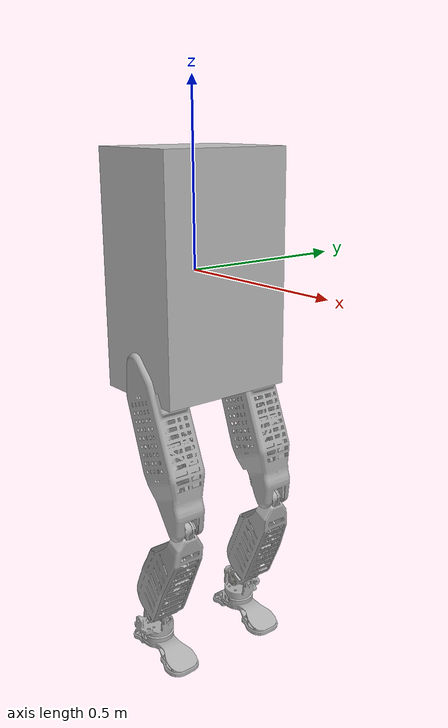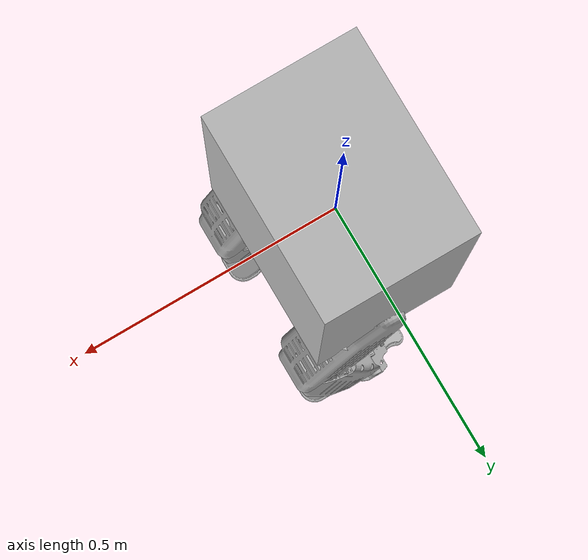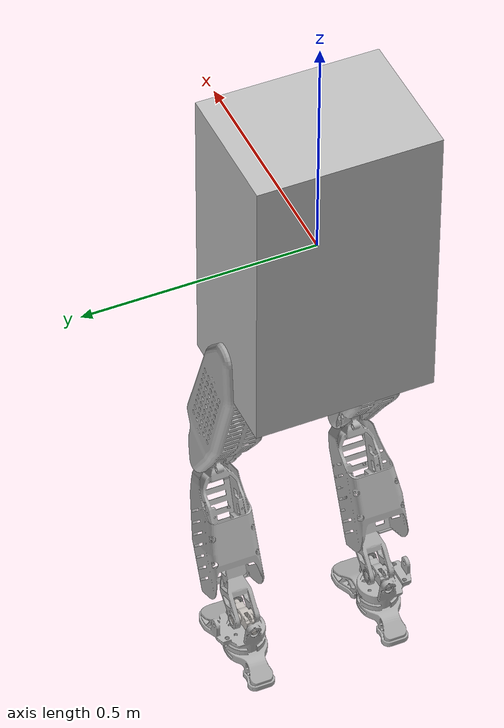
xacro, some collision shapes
<?xml version="1.0" encoding="utf-8"?>
<robot
  name="biped_gazebo">

  <link
    name="trunk">
    <inertial>
      <origin
        xyz="-0.0069577 -4.092E-06 0"
        rpy="0 0 0" />
      <mass
        value="5.3881" />
      <inertia
        ixx="0.045616"
        ixy="-2.279E-06"
        ixz="2.4007E-07"
        iyy="0.029371"
        iyz="1.1002E-10"
        izz="0.074965" />
    </inertial>
    <visual>
      <origin
        xyz="0 0 0"
        rpy="0 0 0" />
      <geometry>
        <mesh
          filename="package://biped_gazebo/meshes/trunk.STL" />
      </geometry>
      <material
        name="">
        <color
          rgba="0.75294 0.75294 0.75294 1" />
      </material>
    </visual>
     <collision>
      <origin
        xyz="0 0 0"
        rpy="0 0 0" />
      <geometry>
        <box size="0.290 0.389 0.648"/>
      </geometry>
    </collision>
  </link>
  <link
    name="r_hip_1">
    <inertial>
      <origin
        xyz="0.033316 4.3525E-12 0.04091"
        rpy="0 0 0" />
      <mass
        value="0.06082" />
      <inertia
        ixx="5.6576E-05"
        ixy="1.3981E-14"
        ixz="4.5222E-06"
        iyy="0.00010609"
        iyz="7.7058E-15"
        izz="0.00010293" />
    </inertial>
    <visual>
      <origin
        xyz="0 0 0"
        rpy="0 0 0" />
      <geometry>
        <mesh
          filename="package://biped_gazebo/meshes/r_hip_1.STL" />
      </geometry>
      <material
        name="">
        <color
          rgba="0.69804 0.69804 0.69804 1" />
      </material>
    </visual>
    <collision>
      <origin
        xyz="0 0 0"
        rpy="0 0 0" />
      <geometry>
        <mesh
          filename="package://biped_gazebo/meshes/r_hip_1.STL" />
      </geometry>
    </collision>
  </link>
  <joint
    name="r_j0"
    type="revolute">
    <origin
      xyz="0 -0.154999999999996 -0.232487666753022"
      rpy="0 -0.338000462941209 0" />
    <parent
      link="trunk" />
    <child
      link="r_hip_1" />
    <axis
      xyz="0.331601353840647 0 0.943419600247446" />
    <dynamics damping="${damping}" friction="${friction}"/>
     <limit effort="${joint_torque_max}" velocity="${joint_velocity_max}" lower="${hip_min*PI/180.0}" upper="${hip_max*PI/180.0}"/>
  </joint>
  <link
    name="r_hip_2">
    <inertial>
      <origin
        xyz="0.010787 -0.00079176 -0.0038183"
        rpy="0 0 0" />
      <mass
        value="0.03831" />
      <inertia
        ixx="1.8449E-05"
        ixy="-3.2225E-07"
        ixz="1.4639E-05"
        iyy="5.5824E-05"
        iyz="1.15E-07"
        izz="5.499E-05" />
    </inertial>
    <visual>
      <origin
        xyz="0 0 0"
        rpy="0 0 0" />
      <geometry>
        <mesh
          filename="package://biped_gazebo/meshes/r_hip_2.STL" />
      </geometry>
      <material
        name="">
        <color
          rgba="0.69804 0.69804 0.69804 1" />
      </material>
    </visual>
    <collision>
      <origin
        xyz="0 0 0"
        rpy="0 0 0" />
      <geometry>
        <mesh
          filename="package://biped_gazebo/meshes/r_hip_2.STL" />
      </geometry>
    </collision>
  </link>
  <joint
    name="r_j1"
    type="revolute">
    <origin
      xyz="0 0 0"
      rpy="0 0 0" />
    <parent
      link="r_hip_1" />
    <child
      link="r_hip_2" />
    <axis
      xyz="0.943419600247446 0 -0.331601353840647" />
    <dynamics damping="${damping}" friction="${friction}"/>
     <limit effort="${joint_torque_max}" velocity="${joint_velocity_max}" lower="${hip_min*PI/180.0}" upper="${hip_max*PI/180.0}"/>
  </joint>
  <link
    name="r_thigh">
    <inertial>
      <origin
        xyz="-0.0030975 0.00070719 -0.23726"
        rpy="0 0 0" />
      <mass
        value="0.1803" />
      <inertia
        ixx="0.0022151"
        ixy="-8.068E-06"
        ixz="0.00011521"
        iyy="0.0021591"
        iyz="3.0782E-05"
        izz="0.00036544" />
    </inertial>
    <visual>
      <origin
        xyz="0 0 0"
        rpy="0 0 0" />
      <geometry>
        <mesh
          filename="package://biped_gazebo/meshes/r_thigh.STL" />
      </geometry>
      <material
        name="">
        <color
          rgba="0.69804 0.69804 0.69804 1" />
      </material>
    </visual>
   <collision>
      <origin
        xyz="0 0 -0.26"
        rpy="0 0 0" />
      <geometry>
        <box size="0.134 0.11 0.52"/>
      </geometry>
    </collision>
  </link>
  <joint
    name="r_j2"
    type="revolute">
    <origin
      xyz="0 0 0"
      rpy="0 0 0" />
    <parent
      link="r_hip_2" />
    <child
      link="r_thigh" />
    <axis
      xyz="0 1 0" />
    <dynamics damping="${damping}" friction="${friction}"/>
     <limit effort="${joint_torque_max}" velocity="${joint_velocity_max}" lower="${hip_min*PI/180.0}" upper="${hip_max*PI/180.0}"/>
  </joint>
  <link
    name="r_shank">
    <inertial>
      <origin
        xyz="0.012918 -0.001006 -0.13905"
        rpy="0 0 0" />
      <mass
        value="0.094371" />
      <inertia
        ixx="0.00074231"
        ixy="-1.0243E-06"
        ixz="5.6781E-05"
        iyy="0.0007242"
        iyz="-4.8112E-06"
        izz="8.7145E-05" />
    </inertial>
    <visual>
      <origin
        xyz="0 0 0"
        rpy="0 0 0" />
      <geometry>
        <mesh
          filename="package://biped_gazebo/meshes/r_shank.STL" />
      </geometry>
      <material
        name="">
        <color
          rgba="0.69804 0.69804 0.69804 1" />
      </material>
    </visual>
    <collision>
      <origin
        xyz="0 0 -0.187"
        rpy="0 0 0" />
      <geometry>
        <box size="0.115 0.092 0.374"/>
      </geometry>
    </collision>
  </link>
  <joint
    name="r_j3"
    type="revolute">
    <origin
      xyz="0 0 -0.459999999999993"
      rpy="0 0.761661685570331 0" />
    <parent
      link="r_thigh" />
    <child
      link="r_shank" />
    <axis
      xyz="0 1 0" />
    <dynamics damping="${damping}" friction="${friction}"/>
     <limit effort="${joint_torque_max}" velocity="${joint_velocity_max}" lower="${hip_min*PI/180.0}" upper="${hip_max*PI/180.0}"/>
  </joint>
  <link
    name="r_ankle">
    <inertial>
      <origin
        xyz="-0.00042543 0.00022181 -1.7557E-06"
        rpy="0 0 0" />
      <mass
        value="0.013946" />
      <inertia
        ixx="2.0724E-06"
        ixy="-1.3161E-09"
        ixz="-9.2509E-09"
        iyy="6.7476E-06"
        iyz="-5.4313E-12"
        izz="7.2632E-06" />
    </inertial>
    <visual>
      <origin
        xyz="0 0 0"
        rpy="0 0 0" />
      <geometry>
        <mesh
          filename="package://biped_gazebo/meshes/r_ankle.STL" />
      </geometry>
      <material
        name="">
        <color
          rgba="0.69804 0.69804 0.69804 1" />
      </material>
    </visual>
    <collision>
      <origin
        xyz="0 0 0"
        rpy="0 0 0" />
      <geometry>
        <mesh
          filename="package://biped_gazebo/meshes/r_ankle.STL" />
      </geometry>
    </collision>
  </link>
  <joint
    name="r_j4"
    type="revolute">
    <origin
      xyz="0 0 -0.369999264544103"
      rpy="0 -0.419926218029841 0" />
    <parent
      link="r_shank" />
    <child
      link="r_ankle" />
    <axis
      xyz="0 1 0" />
       <dynamics damping="${damping}" friction="${friction}"/>
        <limit effort="${joint_torque_max}" velocity="${joint_velocity_max}" lower="${hip_min*PI/180.0}" upper="${hip_max*PI/180.0}"/>
  </joint>
  <link
    name="r_foot">
    <inertial>
      <origin
        xyz="0.029031 -1.0458E-05 -0.09403"
        rpy="0 0 0" />
      <mass
        value="0.076977" />
      <inertia
        ixx="5.1121E-05"
        ixy="-2.3378E-08"
        ixz="2.0448E-05"
        iyy="0.00037216"
        iyz="3.2135E-09"
        izz="0.0003964" />
    </inertial>
    <visual>
      <origin
        xyz="0 0 0"
        rpy="0 0 0" />
      <geometry>
        <mesh
          filename="package://biped_gazebo/meshes/r_foot.STL" />
      </geometry>
      <material
        name="">
        <color
          rgba="0.69804 0.69804 0.69804 1" />
      </material>
    </visual>
    <collision>
      <origin
        xyz="0.0245 0 -0.0615"
        rpy="0 0 0" />
      <geometry>
       <box size="0.257 0.098 0.123"/>
      </geometry>
    </collision>
  </link>
  <joint
    name="r_j5"
    type="revolute">
    <origin
      xyz="0 0 0"
      rpy="0 0 0" />
    <parent
      link="r_ankle" />
    <child
      link="r_foot" />
    <axis
      xyz="1 0 0" />
    <dynamics damping="${damping}" friction="${friction}"/>
     <limit effort="${joint_torque_max}" velocity="${joint_velocity_max}" lower="${hip_min*PI/180.0}" upper="${hip_max*PI/180.0}"/>
  </joint>
  <link
    name="l_hip_1">
    <inertial>
      <origin
        xyz="0.033316 4.3575E-12 0.04091"
        rpy="0 0 0" />
      <mass
        value="0.06082" />
      <inertia
        ixx="5.6576E-05"
        ixy="1.3981E-14"
        ixz="4.5222E-06"
        iyy="0.00010609"
        iyz="7.7058E-15"
        izz="0.00010293" />
    </inertial>
    <visual>
      <origin
        xyz="0 0 0"
        rpy="0 0 0" />
      <geometry>
        <mesh
          filename="package://biped_gazebo/meshes/l_hip_1.STL" />
      </geometry>
      <material
        name="">
        <color
          rgba="0.69804 0.69804 0.69804 1" />
      </material>
    </visual>
    <collision>
      <origin
        xyz="0 0 0"
        rpy="0 0 0" />
      <geometry>
        <mesh
          filename="package://biped_gazebo/meshes/l_hip_1.STL" />
      </geometry>
    </collision>
  </link>
  <joint
    name="l_j0"
    type="revolute">
    <origin
      xyz="0 0.155000000000001 -0.232487666753018"
      rpy="0 -0.338000462941113 0" />
    <parent
      link="trunk" />
    <child
      link="l_hip_1" />
    <axis
      xyz="0.331601353840557 0 0.943419600247477" />
    <dynamics damping="${damping}" friction="${friction}"/>
     <limit effort="${joint_torque_max}" velocity="${joint_velocity_max}" lower="${hip_min*PI/180.0}" upper="${hip_max*PI/180.0}"/>
  </joint>
  <link
    name="l_hip_2">
    <inertial>
      <origin
        xyz="0.010787 0.00079176 -0.0038183"
        rpy="0 0 0" />
      <mass
        value="0.03831" />
      <inertia
        ixx="1.8449E-05"
        ixy="3.2225E-07"
        ixz="1.4639E-05"
        iyy="5.5824E-05"
        iyz="-1.15E-07"
        izz="5.499E-05" />
    </inertial>
    <visual>
      <origin
        xyz="0 0 0"
        rpy="0 0 0" />
      <geometry>
        <mesh
          filename="package://biped_gazebo/meshes/l_hip_2.STL" />
      </geometry>
      <material
        name="">
        <color
          rgba="0.69804 0.69804 0.69804 1" />
      </material>
    </visual>
    <collision>
      <origin
        xyz="0 0 0"
        rpy="0 0 0" />
      <geometry>
        <mesh
          filename="package://biped_gazebo/meshes/l_hip_2.STL" />
      </geometry>
    </collision>
  </link>
  <joint
    name="l_j1"
    type="revolute">
    <origin
      xyz="0 0 0"
      rpy="0 0 0" />
    <parent
      link="l_hip_1" />
    <child
      link="l_hip_2" />
    <axis
      xyz="0.943419600247477 0 -0.331601353840556" />
    <dynamics damping="${damping}" friction="${friction}"/>
     <limit effort="${joint_torque_max}" velocity="${joint_velocity_max}" lower="${hip_min*PI/180.0}" upper="${hip_max*PI/180.0}"/>
  </joint>
  <link
    name="l_thigh">
    <inertial>
      <origin
        xyz="-0.0030975 -0.00070717 -0.23726"
        rpy="0 0 0" />
      <mass
        value="0.1803" />
      <inertia
        ixx="0.0022151"
        ixy="8.068E-06"
        ixz="0.00011521"
        iyy="0.0021591"
        iyz="-3.0782E-05"
        izz="0.00036544" />
    </inertial>
    <visual>
      <origin
        xyz="0 0 0"
        rpy="0 0 0" />
      <geometry>
        <mesh
          filename="package://biped_gazebo/meshes/l_thigh.STL" />
      </geometry>
      <material
        name="">
        <color
          rgba="0.69804 0.69804 0.69804 1" />
      </material>
    </visual>
    <collision>
      <origin
        xyz="0 0 -0.26"
        rpy="0 0 0" />
      <geometry>
        <box size="0.134 0.11 0.52"/>
      </geometry>
    </collision>
  </link>
  <joint
    name="l_j2"
    type="revolute">
    <origin
      xyz="0 0 0"
      rpy="0 0 0" />
    <parent
      link="l_hip_2" />
    <child
      link="l_thigh" />
    <axis
      xyz="0 1 0" />
    <dynamics damping="${damping}" friction="${friction}"/>
     <limit effort="${joint_torque_max}" velocity="${joint_velocity_max}" lower="${hip_min*PI/180.0}" upper="${hip_max*PI/180.0}"/>
  </joint>
  <link
    name="l_shank">
    <inertial>
      <origin
        xyz="0.012918 0.0010059 -0.13905"
        rpy="0 0 0" />
      <mass
        value="0.094371" />
      <inertia
        ixx="0.00074231"
        ixy="1.0243E-06"
        ixz="5.6781E-05"
        iyy="0.0007242"
        iyz="4.8113E-06"
        izz="8.7145E-05" />
    </inertial>
    <visual>
      <origin
        xyz="0 0 0"
        rpy="0 0 0" />
      <geometry>
        <mesh
          filename="package://biped_gazebo/meshes/l_shank.STL" />
      </geometry>
      <material
        name="">
        <color
          rgba="0.69804 0.69804 0.69804 1" />
      </material>
    </visual>
       <collision>
      <origin
        xyz="0 0 -0.187"
        rpy="0 0 0" />
      <geometry>
       <box size="0.115 0.092 0.374"/>
      </geometry>
    </collision>
  </link>
  <joint
    name="l_j3"
    type="revolute">
    <origin
      xyz="0 0 -0.46"
      rpy="0 0.761661685570177 0" />
    <parent
      link="l_thigh" />
    <child
      link="l_shank" />
    <axis
      xyz="0 1 0" />
    <dynamics damping="${damping}" friction="${friction}"/>
     <limit effort="${joint_torque_max}" velocity="${joint_velocity_max}" lower="${hip_min*PI/180.0}" upper="${hip_max*PI/180.0}"/>
  </joint>
  <link
    name="l_ankle">
    <inertial>
      <origin
        xyz="-0.00042543 -0.00022181 -1.7557E-06"
        rpy="0 0 0" />
      <mass
        value="0.013946" />
      <inertia
        ixx="2.0724E-06"
        ixy="1.3161E-09"
        ixz="-9.2509E-09"
        iyy="6.7476E-06"
        iyz="5.4313E-12"
        izz="7.2632E-06" />
    </inertial>
    <visual>
      <origin
        xyz="0 0 0"
        rpy="0 0 0" />
      <geometry>
        <mesh
          filename="package://biped_gazebo/meshes/l_ankle.STL" />
      </geometry>
      <material
        name="">
        <color
          rgba="0.77647 0.75686 0.73725 1" />
      </material>
    </visual>
    <collision>
      <origin
        xyz="0 0 0"
        rpy="0 0 0" />
      <geometry>
        <mesh
          filename="package://biped_gazebo/meshes/l_ankle.STL" />
      </geometry>
    </collision>
  </link>
  <joint
    name="l_j4"
    type="revolute">
    <origin
      xyz="0 0 -0.369999264544098"
      rpy="0 -0.419926218029782 0" />
    <parent
      link="l_shank" />
    <child
      link="l_ankle" />
    <axis
      xyz="0 1 0" />
       <dynamics damping="${damping}" friction="${friction}"/>
        <limit effort="${joint_torque_max}" velocity="${joint_velocity_max}" lower="${hip_min*PI/180.0}" upper="${hip_max*PI/180.0}"/>
  </joint>
  <link
    name="l_foot">
    <inertial>
      <origin
        xyz="0.02903 1.0533E-05 -0.094029"
        rpy="0 0 0" />
      <mass
        value="0.076977" />
      <inertia
        ixx="5.1121E-05"
        ixy="2.2836E-08"
        ixz="2.0449E-05"
        iyy="0.00037216"
        iyz="-3.2901E-09"
        izz="0.0003964" />
    </inertial>
    <visual>
      <origin
        xyz="0 0 0"
        rpy="0 0 0" />
      <geometry>
        <mesh
          filename="package://biped_gazebo/meshes/l_foot.STL" />
      </geometry>
      <material
        name="">
        <color
          rgba="0.69804 0.69804 0.69804 1" />
      </material>
    </visual>
    <collision>
      <origin
        xyz="0.0245 0 -0.0615"
        rpy="0 0 0" />
      <geometry>
       <box size="0.257 0.098 0.123"/>
      </geometry>
    </collision>
  </link>
  <joint
    name="l_j5"
    type="revolute">
    <origin
      xyz="0 0 0"
      rpy="0 0 0" />
    <parent
      link="l_ankle" />
    <child
      link="l_foot" />
    <axis
      xyz="1 0 0" />
     <dynamics damping="${damping}" friction="${friction}"/>
      <limit effort="${joint_torque_max}" velocity="${joint_velocity_max}" lower="${hip_min*PI/180.0}" upper="${hip_max*PI/180.0}"/>
  </joint>
   <link name="lcontactpoint">
    <inertial>
      <mass value="0"/>
      <origin rpy="0 0 0" xyz="0 0 0"/>
      <inertia ixx="0" ixy="0" ixz="0" iyy="0" iyz="0" izz="0"/>
    </inertial>

  </link>
  <joint name="lcontact_fixed_joint" type="fixed">
    <origin rpy="0 0 0" xyz="0 0 -0.123"/>
    <parent link="l_foot"/>
    <child link="lcontactpoint"/>
  </joint>

   <link name="rcontactpoint">
    <inertial>
      <mass value="0"/>
      <origin rpy="0 0 0" xyz="0 0 0"/>=
      <inertia ixx="0" ixy="0" ixz="0" iyy="0" iyz="0" izz="0"/>
    </inertial>
  </link>
  <joint name="rcontact_fixed_joint" type="fixed">
    <origin rpy="0 0 0" xyz="0 0 -0.123"/>
    <parent link="r_foot"/>
    <child link="rcontactpoint"/>
  </joint>

</robot>
